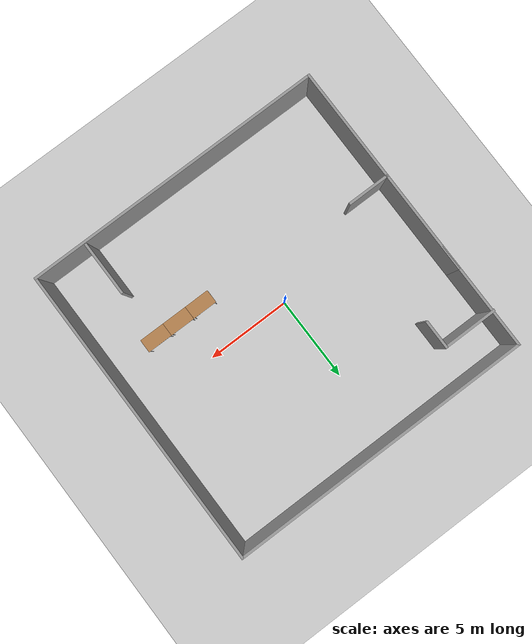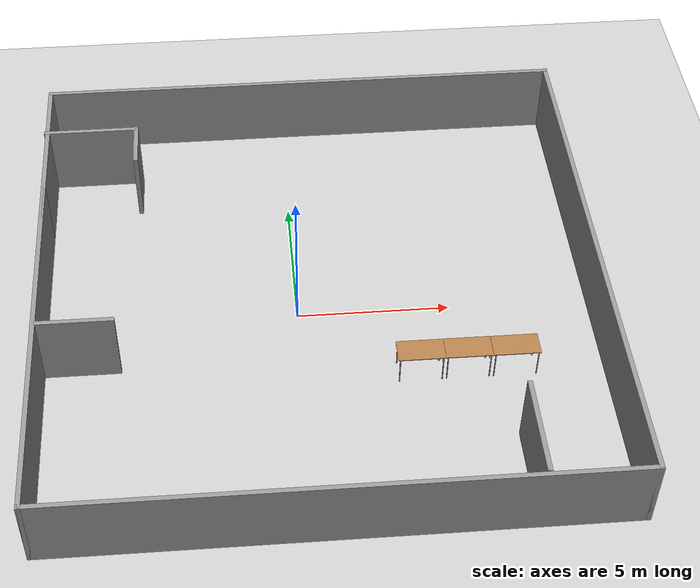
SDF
<sdf version="1.7">
 <world name="default">
  <light name="sun" type="directional">
   <pose>0 0 10 0 -0 0</pose>
   <diffuse>0.8 0.8 0.8 1</diffuse>
   <specular>0.2 0.2 0.2 1</specular>
   <attenuation>
    <range>1000</range>
    <constant>0.9</constant>
    <linear>0.01</linear>
    <quadratic>0.001</quadratic>
   </attenuation>
   <direction>-0.5 0.1 -0.9</direction>
   <spot><inner_angle>0</inner_angle><outer_angle>0</outer_angle><falloff>0</falloff></spot>
  </light>
  <model name="ground_plane">
   <static>1</static>
   <link name="link">
    <collision name="collision">
     <geometry><plane><normal>0 0 1</normal><size>100 100</size></plane></geometry>
     <surface>
      <contact><collide_bitmask>65535</collide_bitmask></contact>
      <friction><ode><mu>100</mu><mu2>50</mu2></ode></friction>
     </surface>
    </collision>
    <visual name="visual">
     <cast_shadows>0</cast_shadows>
     <geometry><plane><normal>0 0 1</normal><size>100 100</size></plane></geometry>
     <material>
      <script><uri>file://media/materials/scripts/gazebo.material</uri><name>Gazebo/Grey</name></script>
     </material>
    </visual>
   </link>
  </model>
  <gravity>0 0 -9.8</gravity>
  <magnetic_field>6e-06 2.3e-05 -4.2e-05</magnetic_field>
  <atmosphere type="adiabatic"/>
  <physics type="ode">
   <max_step_size>0.001</max_step_size>
   <real_time_factor>1</real_time_factor>
   <real_time_update_rate>1000</real_time_update_rate>
  </physics>
  <scene><ambient>0.4 0.4 0.4 1</ambient><background>0.7 0.7 0.7 1</background><shadows>1</shadows></scene>
  <spherical_coordinates>
   <surface_model>EARTH_WGS84</surface_model>
   <latitude_deg>0</latitude_deg>
   <longitude_deg>0</longitude_deg>
   <elevation>0</elevation>
   <heading_deg>0</heading_deg>
  </spherical_coordinates>
  <model name="haha">
   <pose>0.698534 0.212093 0 0 -0 0</pose>
   <link name="Wall_11">
    <collision name="Wall_11_Collision">
     <geometry><box><size>3.25 0.15 2.5</size></box></geometry>
     <pose>0 0 1.25 0 -0 0</pose>
    </collision>
    <visual name="Wall_11_Visual">
     <pose>0 0 1.25 0 -0 0</pose>
     <geometry><box><size>3.25 0.15 2.5</size></box></geometry>
     <material>
      <script><uri>file://media/materials/scripts/gazebo.material</uri><name>Gazebo/Grey</name></script>
      <ambient>1 1 1 1</ambient>
     </material>
     <meta><layer>0</layer></meta>
    </visual>
    <pose>-7.39812 6.76767 0 0 -0 0</pose>
   </link>
   <link name="Wall_12">
    <collision name="Wall_12_Collision">
     <geometry><box><size>1.75 0.15 2.5</size></box></geometry>
     <pose>0 0 1.25 0 -0 0</pose>
    </collision>
    <visual name="Wall_12_Visual">
     <pose>0 0 1.25 0 -0 0</pose>
     <geometry><box><size>1.75 0.15 2.5</size></box></geometry>
     <material>
      <script><uri>file://media/materials/scripts/gazebo.material</uri><name>Gazebo/Grey</name></script>
      <ambient>1 1 1 1</ambient>
     </material>
     <meta><layer>0</layer></meta>
    </visual>
    <pose>-5.84812 5.96767 0 0 -0 -1.5708</pose>
   </link>
   <link name="Wall_14">
    <collision name="Wall_14_Collision">
     <geometry><box><size>3.25 0.15 2.5</size></box></geometry>
     <pose>0 0 1.25 0 -0 0</pose>
    </collision>
    <visual name="Wall_14_Visual">
     <pose>0 0 1.25 0 -0 0</pose>
     <geometry><box><size>3.25 0.15 2.5</size></box></geometry>
     <material>
      <script><uri>file://media/materials/scripts/gazebo.material</uri><name>Gazebo/Grey</name></script>
      <ambient>1 1 1 1</ambient>
     </material>
     <meta><layer>0</layer></meta>
    </visual>
    <pose>5.81857 -7.19491 0 0 -0 -1.5708</pose>
   </link>
   <link name="Wall_16">
    <collision name="Wall_16_Collision">
     <geometry><box><size>2.5 0.15 2.5</size></box></geometry>
     <pose>0 0 1.25 0 -0 0</pose>
    </collision>
    <visual name="Wall_16_Visual">
     <pose>0 0 1.25 0 -0 0</pose>
     <geometry><box><size>2.5 0.15 2.5</size></box></geometry>
     <material>
      <script><uri>file://media/materials/scripts/gazebo.material</uri><name>Gazebo/Grey</name></script>
      <ambient>1 1 1 1</ambient>
     </material>
     <meta><layer>0</layer></meta>
    </visual>
    <pose>-7.66612 -2.16725 0 0 -0 0</pose>
   </link>
   <link name="Wall_5">
    <collision name="Wall_5_Collision">
     <geometry><box><size>13 0.15 2.5</size></box></geometry>
     <pose>0 0 1.25 0 -0 0</pose>
    </collision>
    <visual name="Wall_5_Visual">
     <pose>0 0 1.25 0 -0 0</pose>
     <geometry><box><size>13 0.15 2.5</size></box></geometry>
     <material>
      <script><uri>file://media/materials/scripts/gazebo.material</uri><name>Gazebo/Grey</name></script>
      <ambient>1 1 1 1</ambient>
     </material>
     <meta><layer>0</layer></meta>
    </visual>
    <pose>-8.90188 -2.5 0 0 -0 -1.5708</pose>
   </link>
   <link name="Wall_6">
    <collision name="Wall_6_Collision">
     <geometry><box><size>18 0.15 2.5</size></box></geometry>
     <pose>0 0 1.25 0 -0 0</pose>
    </collision>
    <visual name="Wall_6_Visual">
     <pose>0 0 1.25 0 -0 0</pose>
     <geometry><box><size>18 0.15 2.5</size></box></geometry>
     <material>
      <script><uri>file://media/materials/scripts/gazebo.material</uri><name>Gazebo/Grey</name></script>
      <ambient>1 1 1 1</ambient>
     </material>
     <meta><layer>0</layer></meta>
    </visual>
    <pose>0.02312 -8.925 0 0 -0 0</pose>
   </link>
   <link name="Wall_7">
    <collision name="Wall_7_Collision">
     <geometry><box><size>18 0.15 2.5</size></box></geometry>
     <pose>0 0 1.25 0 -0 0</pose>
    </collision>
    <visual name="Wall_7_Visual">
     <pose>0 0 1.25 0 -0 0</pose>
     <geometry><box><size>18 0.15 2.5</size></box></geometry>
     <material>
      <script><uri>file://media/materials/scripts/gazebo.material</uri><name>Gazebo/Grey</name></script>
      <ambient>1 1 1 1</ambient>
     </material>
     <meta><layer>0</layer></meta>
    </visual>
    <pose>8.94812 0 0 0 -0 1.5708</pose>
   </link>
   <link name="Wall_8">
    <collision name="Wall_8_Collision">
     <geometry><box><size>18 0.15 2.5</size></box></geometry>
     <pose>0 0 1.25 0 -0 0</pose>
    </collision>
    <visual name="Wall_8_Visual">
     <pose>0 0 1.25 0 -0 0</pose>
     <geometry><box><size>18 0.15 2.5</size></box></geometry>
     <material>
      <script><uri>file://media/materials/scripts/gazebo.material</uri><name>Gazebo/Grey</name></script>
      <ambient>1 1 1 1</ambient>
     </material>
     <meta><layer>0</layer></meta>
    </visual>
    <pose>0.02312 8.925 0 0 -0 3.14159</pose>
   </link>
   <link name="Wall_9">
    <collision name="Wall_9_Collision">
     <geometry><box><size>6.5 0.15 2.5</size></box></geometry>
     <pose>0 0 1.25 0 -0 0</pose>
    </collision>
    <visual name="Wall_9_Visual">
     <pose>0 0 1.25 0 -0 0</pose>
     <geometry><box><size>6.5 0.15 2.5</size></box></geometry>
     <material>
      <script><uri>file://media/materials/scripts/gazebo.material</uri><name>Gazebo/Grey</name></script>
      <ambient>1 1 1 1</ambient>
     </material>
     <meta><layer>0</layer></meta>
    </visual>
    <pose>-8.90188 5.75 0 0 -0 -1.5708</pose>
   </link>
   <static>1</static>
  </model>
  <model name="table">
   <static>1</static>
   <link name="link">
    <collision name="surface">
     <pose>0 0 1 0 -0 0</pose>
     <geometry><box><size>1.5 0.8 0.03</size></box></geometry>
     <surface><friction><ode><mu>0.6</mu><mu2>0.6</mu2></ode></friction></surface>
    </collision>
    <visual name="visual1">
     <pose>0 0 1 0 -0 0</pose>
     <geometry><box><size>1.5 0.8 0.03</size></box></geometry>
     <material>
      <script><uri>file://media/materials/scripts/gazebo.material</uri><name>Gazebo/Wood</name></script>
     </material>
    </visual>
    <collision name="front_left_leg">
     <pose>0.68 0.38 0.5 0 -0 0</pose>
     <geometry><cylinder><radius>0.02</radius><length>1</length></cylinder></geometry>
    </collision>
    <visual name="front_left_leg">
     <pose>0.68 0.38 0.5 0 -0 0</pose>
     <geometry><cylinder><radius>0.02</radius><length>1</length></cylinder></geometry>
     <material>
      <script><uri>file://media/materials/scripts/gazebo.material</uri><name>Gazebo/Grey</name></script>
     </material>
    </visual>
    <collision name="front_right_leg">
     <pose>0.68 -0.38 0.5 0 -0 0</pose>
     <geometry><cylinder><radius>0.02</radius><length>1</length></cylinder></geometry>
    </collision>
    <visual name="front_right_leg">
     <pose>0.68 -0.38 0.5 0 -0 0</pose>
     <geometry><cylinder><radius>0.02</radius><length>1</length></cylinder></geometry>
     <material>
      <script><uri>file://media/materials/scripts/gazebo.material</uri><name>Gazebo/Grey</name></script>
     </material>
    </visual>
    <collision name="back_right_leg">
     <pose>-0.68 -0.38 0.5 0 -0 0</pose>
     <geometry><cylinder><radius>0.02</radius><length>1</length></cylinder></geometry>
    </collision>
    <visual name="back_right_leg">
     <pose>-0.68 -0.38 0.5 0 -0 0</pose>
     <geometry><cylinder><radius>0.02</radius><length>1</length></cylinder></geometry>
     <material>
      <script><uri>file://media/materials/scripts/gazebo.material</uri><name>Gazebo/Grey</name></script>
     </material>
    </visual>
    <collision name="back_left_leg">
     <pose>-0.68 0.38 0.5 0 -0 0</pose>
     <geometry><cylinder><radius>0.02</radius><length>1</length></cylinder></geometry>
    </collision>
    <visual name="back_left_leg">
     <pose>-0.68 0.38 0.5 0 -0 0</pose>
     <geometry><cylinder><radius>0.02</radius><length>1</length></cylinder></geometry>
     <material>
      <script><uri>file://media/materials/scripts/gazebo.material</uri><name>Gazebo/Grey</name></script>
     </material>
    </visual>
   </link>
   <pose>6.70791 -2.63656 0 0 -0 0</pose>
  </model>
  <model name="table_0">
   <static>1</static>
   <link name="link">
    <collision name="surface">
     <pose>0 0 1 0 -0 0</pose>
     <geometry><box><size>1.5 0.8 0.03</size></box></geometry>
     <surface><friction><ode><mu>0.6</mu><mu2>0.6</mu2></ode></friction></surface>
    </collision>
    <visual name="visual1">
     <pose>0 0 1 0 -0 0</pose>
     <geometry><box><size>1.5 0.8 0.03</size></box></geometry>
     <material>
      <script><uri>file://media/materials/scripts/gazebo.material</uri><name>Gazebo/Wood</name></script>
     </material>
    </visual>
    <collision name="front_left_leg">
     <pose>0.68 0.38 0.5 0 -0 0</pose>
     <geometry><cylinder><radius>0.02</radius><length>1</length></cylinder></geometry>
    </collision>
    <visual name="front_left_leg">
     <pose>0.68 0.38 0.5 0 -0 0</pose>
     <geometry><cylinder><radius>0.02</radius><length>1</length></cylinder></geometry>
     <material>
      <script><uri>file://media/materials/scripts/gazebo.material</uri><name>Gazebo/Grey</name></script>
     </material>
    </visual>
    <collision name="front_right_leg">
     <pose>0.68 -0.38 0.5 0 -0 0</pose>
     <geometry><cylinder><radius>0.02</radius><length>1</length></cylinder></geometry>
    </collision>
    <visual name="front_right_leg">
     <pose>0.68 -0.38 0.5 0 -0 0</pose>
     <geometry><cylinder><radius>0.02</radius><length>1</length></cylinder></geometry>
     <material>
      <script><uri>file://media/materials/scripts/gazebo.material</uri><name>Gazebo/Grey</name></script>
     </material>
    </visual>
    <collision name="back_right_leg">
     <pose>-0.68 -0.38 0.5 0 -0 0</pose>
     <geometry><cylinder><radius>0.02</radius><length>1</length></cylinder></geometry>
    </collision>
    <visual name="back_right_leg">
     <pose>-0.68 -0.38 0.5 0 -0 0</pose>
     <geometry><cylinder><radius>0.02</radius><length>1</length></cylinder></geometry>
     <material>
      <script><uri>file://media/materials/scripts/gazebo.material</uri><name>Gazebo/Grey</name></script>
     </material>
    </visual>
    <collision name="back_left_leg">
     <pose>-0.68 0.38 0.5 0 -0 0</pose>
     <geometry><cylinder><radius>0.02</radius><length>1</length></cylinder></geometry>
    </collision>
    <visual name="back_left_leg">
     <pose>-0.68 0.38 0.5 0 -0 0</pose>
     <geometry><cylinder><radius>0.02</radius><length>1</length></cylinder></geometry>
     <material>
      <script><uri>file://media/materials/scripts/gazebo.material</uri><name>Gazebo/Grey</name></script>
     </material>
    </visual>
   </link>
   <pose>5.20675 -2.63196 0 0 -0 0</pose>
  </model>
  <model name="table_1">
   <static>1</static>
   <link name="link">
    <collision name="surface">
     <pose>0 0 1 0 -0 0</pose>
     <geometry><box><size>1.5 0.8 0.03</size></box></geometry>
     <surface><friction><ode><mu>0.6</mu><mu2>0.6</mu2></ode></friction></surface>
    </collision>
    <visual name="visual1">
     <pose>0 0 1 0 -0 0</pose>
     <geometry><box><size>1.5 0.8 0.03</size></box></geometry>
     <material>
      <script><uri>file://media/materials/scripts/gazebo.material</uri><name>Gazebo/Wood</name></script>
     </material>
    </visual>
    <collision name="front_left_leg">
     <pose>0.68 0.38 0.5 0 -0 0</pose>
     <geometry><cylinder><radius>0.02</radius><length>1</length></cylinder></geometry>
    </collision>
    <visual name="front_left_leg">
     <pose>0.68 0.38 0.5 0 -0 0</pose>
     <geometry><cylinder><radius>0.02</radius><length>1</length></cylinder></geometry>
     <material>
      <script><uri>file://media/materials/scripts/gazebo.material</uri><name>Gazebo/Grey</name></script>
     </material>
    </visual>
    <collision name="front_right_leg">
     <pose>0.68 -0.38 0.5 0 -0 0</pose>
     <geometry><cylinder><radius>0.02</radius><length>1</length></cylinder></geometry>
    </collision>
    <visual name="front_right_leg">
     <pose>0.68 -0.38 0.5 0 -0 0</pose>
     <geometry><cylinder><radius>0.02</radius><length>1</length></cylinder></geometry>
     <material>
      <script><uri>file://media/materials/scripts/gazebo.material</uri><name>Gazebo/Grey</name></script>
     </material>
    </visual>
    <collision name="back_right_leg">
     <pose>-0.68 -0.38 0.5 0 -0 0</pose>
     <geometry><cylinder><radius>0.02</radius><length>1</length></cylinder></geometry>
    </collision>
    <visual name="back_right_leg">
     <pose>-0.68 -0.38 0.5 0 -0 0</pose>
     <geometry><cylinder><radius>0.02</radius><length>1</length></cylinder></geometry>
     <material>
      <script><uri>file://media/materials/scripts/gazebo.material</uri><name>Gazebo/Grey</name></script>
     </material>
    </visual>
    <collision name="back_left_leg">
     <pose>-0.68 0.38 0.5 0 -0 0</pose>
     <geometry><cylinder><radius>0.02</radius><length>1</length></cylinder></geometry>
    </collision>
    <visual name="back_left_leg">
     <pose>-0.68 0.38 0.5 0 -0 0</pose>
     <geometry><cylinder><radius>0.02</radius><length>1</length></cylinder></geometry>
     <material>
      <script><uri>file://media/materials/scripts/gazebo.material</uri><name>Gazebo/Grey</name></script>
     </material>
    </visual>
   </link>
   <pose>3.70664 -2.63395 0 0 -0 0</pose>
  </model>
 </world>
</sdf>
